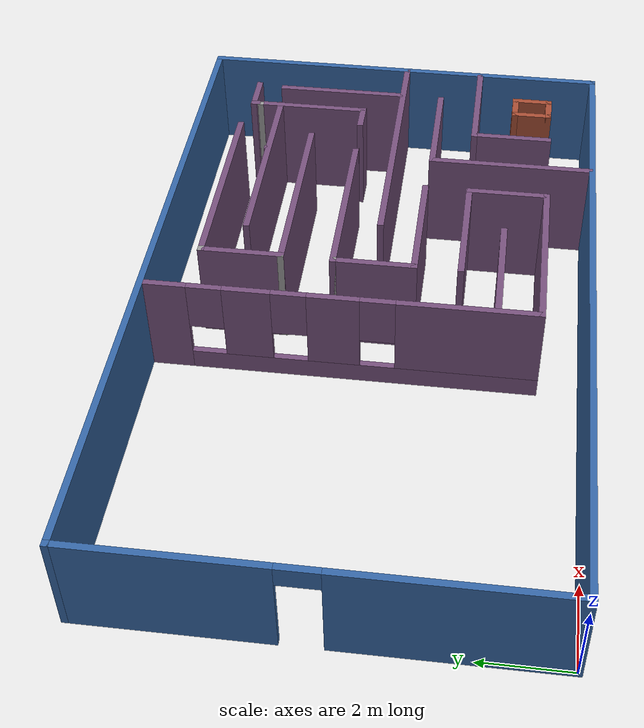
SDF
<?xml version='1.0'?>
<sdf version='1.6'>
  <model name='training_building'>
    <pose frame=''>8.09 5 0 0 -0 0</pose>
    <link name='Wall_0'>
      <pose frame=''>-8.09 -0 0 0 -0 -1.5708</pose>
      <visual name='Wall_0_Visual_0'>
        <pose frame=''>-2.92071 0 1.25 0 -0 0</pose>
        <geometry>
          <box>
            <size>4.30859 0.15 2.5</size>
          </box>
        </geometry>
        <material>
          <script>
            <uri>file://media/materials/scripts/gazebo.material</uri>
            <name>Gazebo/Grey</name>
          </script>
          <ambient>0.203922 0.396078 0.643137 1</ambient>
        </material>
        <meta>
          <layer>0</layer>
        </meta>
      </visual>
      <collision name='Wall_0_Collision_0'>
        <geometry>
          <box>
            <size>4.30859 0.15 2.5</size>
          </box>
        </geometry>
        <pose frame=''>-2.92071 0 1.25 0 -0 0</pose>
      </collision>
      <visual name='Wall_0_Visual_1'>
        <pose frame=''>2.60429 0 1.25 0 -0 0</pose>
        <geometry>
          <box>
            <size>4.94141 0.15 2.5</size>
          </box>
        </geometry>
        <material>
          <script>
            <uri>file://media/materials/scripts/gazebo.material</uri>
            <name>Gazebo/Grey</name>
          </script>
          <ambient>0.203922 0.396078 0.643137 1</ambient>
        </material>
        <meta>
          <layer>0</layer>
        </meta>
      </visual>
      <collision name='Wall_0_Collision_1'>
        <geometry>
          <box>
            <size>4.94141 0.15 2.5</size>
          </box>
        </geometry>
        <pose frame=''>2.60429 0 1.25 0 -0 0</pose>
      </collision>
      <visual name='Wall_0_Visual_2'>
        <pose frame=''>-0.316412 0 2.25 0 -0 0</pose>
        <geometry>
          <box>
            <size>0.9 0.15 0.5</size>
          </box>
        </geometry>
        <material>
          <script>
            <uri>file://media/materials/scripts/gazebo.material</uri>
            <name>Gazebo/Grey</name>
          </script>
          <ambient>0.203922 0.396078 0.643137 1</ambient>
        </material>
        <meta>
          <layer>0</layer>
        </meta>
      </visual>
      <collision name='Wall_0_Collision_2'>
        <geometry>
          <box>
            <size>0.9 0.15 0.5</size>
          </box>
        </geometry>
        <pose frame=''>-0.316412 0 2.25 0 -0 0</pose>
      </collision>
    </link>
    <link name='Wall_1'>
      <collision name='Wall_1_Collision'>
        <geometry>
          <box>
            <size>16.33 0.15 2.5</size>
          </box>
        </geometry>
        <pose frame=''>0 0 1.25 0 -0 0</pose>
      </collision>
      <visual name='Wall_1_Visual'>
        <pose frame=''>0 0 1.25 0 -0 0</pose>
        <geometry>
          <box>
            <size>16.33 0.15 2.5</size>
          </box>
        </geometry>
        <material>
          <script>
            <uri>file://media/materials/scripts/gazebo.material</uri>
            <name>Gazebo/Grey</name>
          </script>
          <ambient>0.203922 0.396078 0.643137 1</ambient>
        </material>
        <meta>
          <layer>0</layer>
        </meta>
      </visual>
      <pose frame=''>-0 -5 0 0 -0 0</pose>
    </link>
    <link name='Wall_107'>
      <collision name='Wall_107_Collision'>
        <geometry>
          <box>
            <size>4.25 0.15 2.5</size>
          </box>
        </geometry>
        <pose frame=''>0 0 1.25 0 -0 0</pose>
      </collision>
      <visual name='Wall_107_Visual'>
        <pose frame=''>0 0 1.25 0 -0 0</pose>
        <geometry>
          <box>
            <size>4.25 0.15 2.5</size>
          </box>
        </geometry>
        <material>
          <script>
            <uri>file://media/materials/scripts/gazebo.material</uri>
            <name>Gazebo/Grey</name>
          </script>
          <ambient>0.458824 0.313726 0.482353 1</ambient>
        </material>
        <meta>
          <layer>0</layer>
        </meta>
      </visual>
      <pose frame=''>2.35436 0.841485 0 0 -0 3.14159</pose>
    </link>
    <link name='Wall_108'>
      <collision name='Wall_108_Collision'>
        <geometry>
          <box>
            <size>0.15 0.15 2.5</size>
          </box>
        </geometry>
        <pose frame=''>0 0 1.25 0 -0 0</pose>
      </collision>
      <visual name='Wall_108_Visual'>
        <pose frame=''>0 0 1.25 0 -0 0</pose>
        <geometry>
          <box>
            <size>0.15 0.15 2.5</size>
          </box>
        </geometry>
        <material>
          <script>
            <uri>file://media/materials/scripts/gazebo.material</uri>
            <name>Gazebo/Grey</name>
          </script>
          <ambient>1 1 1 1</ambient>
        </material>
        <meta>
          <layer>0</layer>
        </meta>
      </visual>
      <pose frame=''>0.304359 0.841485 0 0 -0 0</pose>
    </link>
    <link name='Wall_109'>
      <collision name='Wall_109_Collision'>
        <geometry>
          <box>
            <size>2 0.15 2.5</size>
          </box>
        </geometry>
        <pose frame=''>0 0 1.25 0 -0 0</pose>
      </collision>
      <visual name='Wall_109_Visual'>
        <pose frame=''>0 0 1.25 0 -0 0</pose>
        <geometry>
          <box>
            <size>2 0.15 2.5</size>
          </box>
        </geometry>
        <material>
          <script>
            <uri>file://media/materials/scripts/gazebo.material</uri>
            <name>Gazebo/Grey</name>
          </script>
          <ambient>0.458824 0.313726 0.482353 1</ambient>
        </material>
        <meta>
          <layer>0</layer>
        </meta>
      </visual>
      <pose frame=''>0.304359 -0.083515 0 0 -0 -1.5708</pose>
    </link>
    <link name='Wall_11'>
      <collision name='Wall_11_Collision'>
        <geometry>
          <box>
            <size>2.75 0.15 2.5</size>
          </box>
        </geometry>
        <pose frame=''>0 0 1.25 0 -0 0</pose>
      </collision>
      <visual name='Wall_11_Visual'>
        <pose frame=''>0 0 1.25 0 -0 0</pose>
        <geometry>
          <box>
            <size>2.75 0.15 2.5</size>
          </box>
        </geometry>
        <material>
          <script>
            <uri>file://media/materials/scripts/gazebo.material</uri>
            <name>Gazebo/Grey</name>
          </script>
          <ambient>0.458824 0.313726 0.482353 1</ambient>
        </material>
        <meta>
          <layer>0</layer>
        </meta>
      </visual>
      <pose frame=''>0.486749 -2.96094 0 0 -0 0</pose>
    </link>
    <link name='Wall_110'>
      <collision name='Wall_110_Collision'>
        <geometry>
          <box>
            <size>3 0.15 2.5</size>
          </box>
        </geometry>
        <pose frame=''>0 0 1.25 0 -0 0</pose>
      </collision>
      <visual name='Wall_110_Visual'>
        <pose frame=''>0 0 1.25 0 -0 0</pose>
        <geometry>
          <box>
            <size>3 0.15 2.5</size>
          </box>
        </geometry>
        <material>
          <script>
            <uri>file://media/materials/scripts/gazebo.material</uri>
            <name>Gazebo/Grey</name>
          </script>
          <ambient>0.458824 0.313726 0.482353 1</ambient>
        </material>
        <meta>
          <layer>0</layer>
        </meta>
      </visual>
      <pose frame=''>1.72936 -1.00852 0 0 -0 0</pose>
    </link>
    <link name='Wall_113'>
      <collision name='Wall_113_Collision'>
        <geometry>
          <box>
            <size>0.15 0.15 2.5</size>
          </box>
        </geometry>
        <pose frame=''>0 0 1.25 0 -0 0</pose>
      </collision>
      <visual name='Wall_113_Visual'>
        <pose frame=''>0 0 1.25 0 -0 0</pose>
        <geometry>
          <box>
            <size>0.15 0.15 2.5</size>
          </box>
        </geometry>
        <material>
          <script>
            <uri>file://media/materials/scripts/gazebo.material</uri>
            <name>Gazebo/Grey</name>
          </script>
          <ambient>0.458824 0.313726 0.482353 1</ambient>
        </material>
        <meta>
          <layer>0</layer>
        </meta>
      </visual>
      <pose frame=''>4.27395 3.04022 0 0 -0 0</pose>
    </link>
    <link name='Wall_126'>
      <collision name='Wall_126_Collision'>
        <geometry>
          <box>
            <size>3 0.15 2.5</size>
          </box>
        </geometry>
        <pose frame=''>0 0 1.25 0 -0 0</pose>
      </collision>
      <visual name='Wall_126_Visual'>
        <pose frame=''>0 0 1.25 0 -0 0</pose>
        <geometry>
          <box>
            <size>3 0.15 2.5</size>
          </box>
        </geometry>
        <material>
          <script>
            <uri>file://media/materials/scripts/gazebo.material</uri>
            <name>Gazebo/Grey</name>
          </script>
          <ambient>0.458824 0.313726 0.482353 1</ambient>
        </material>
        <meta>
          <layer>0</layer>
        </meta>
      </visual>
      <pose frame=''>6.1436 2.28693 0 0 -0 -1.5708</pose>
    </link>
    <link name='Wall_127'>
      <collision name='Wall_127_Collision'>
        <geometry>
          <box>
            <size>0.15 0.15 2.5</size>
          </box>
        </geometry>
        <pose frame=''>0 0 1.25 0 -0 0</pose>
      </collision>
      <visual name='Wall_127_Visual'>
        <pose frame=''>0 0 1.25 0 -0 0</pose>
        <geometry>
          <box>
            <size>0.15 0.15 2.5</size>
          </box>
        </geometry>
        <material>
          <script>
            <uri>file://media/materials/scripts/gazebo.material</uri>
            <name>Gazebo/Grey</name>
          </script>
          <ambient>1 1 1 1</ambient>
        </material>
        <meta>
          <layer>0</layer>
        </meta>
      </visual>
      <pose frame=''>6.1436 0.861927 0 0 -0 0</pose>
    </link>
    <link name='Wall_128'>
      <collision name='Wall_128_Collision'>
        <geometry>
          <box>
            <size>0.75 0.15 2.5</size>
          </box>
        </geometry>
        <pose frame=''>0 0 1.25 0 -0 0</pose>
      </collision>
      <visual name='Wall_128_Visual'>
        <pose frame=''>0 0 1.25 0 -0 0</pose>
        <geometry>
          <box>
            <size>0.75 0.15 2.5</size>
          </box>
        </geometry>
        <material>
          <script>
            <uri>file://media/materials/scripts/gazebo.material</uri>
            <name>Gazebo/Grey</name>
          </script>
          <ambient>0.458824 0.313726 0.482353 1</ambient>
        </material>
        <meta>
          <layer>0</layer>
        </meta>
      </visual>
      <pose frame=''>5.8436 0.861927 0 0 -0 3.14159</pose>
    </link>
    <link name='Wall_133'>
      <collision name='Wall_133_Collision'>
        <geometry>
          <box>
            <size>4.75 0.15 2.5</size>
          </box>
        </geometry>
        <pose frame=''>0 0 1.25 0 -0 0</pose>
      </collision>
      <visual name='Wall_133_Visual'>
        <pose frame=''>0 0 1.25 0 -0 0</pose>
        <geometry>
          <box>
            <size>4.75 0.15 2.5</size>
          </box>
        </geometry>
        <material>
          <script>
            <uri>file://media/materials/scripts/gazebo.material</uri>
            <name>Gazebo/Grey</name>
          </script>
          <ambient>0.458824 0.313726 0.482353 1</ambient>
        </material>
        <meta>
          <layer>0</layer>
        </meta>
      </visual>
      <pose frame=''>2.62954 2.03445 0 0 -0 0</pose>
    </link>
    <link name='Wall_135'>
      <collision name='Wall_135_Collision'>
        <geometry>
          <box>
            <size>5 0.15 2.5</size>
          </box>
        </geometry>
        <pose frame=''>0 0 1.25 0 -0 0</pose>
      </collision>
      <visual name='Wall_135_Visual'>
        <pose frame=''>0 0 1.25 0 -0 0</pose>
        <geometry>
          <box>
            <size>5 0.15 2.5</size>
          </box>
        </geometry>
        <material>
          <script>
            <uri>file://media/materials/scripts/gazebo.material</uri>
            <name>Gazebo/Grey</name>
          </script>
          <ambient>0.458824 0.313726 0.482353 1</ambient>
        </material>
        <meta>
          <layer>0</layer>
        </meta>
      </visual>
      <pose frame=''>3.73389 3.00835 0 0 -0 3.14159</pose>
    </link>
    <link name='Wall_137'>
      <collision name='Wall_137_Collision'>
        <geometry>
          <box>
            <size>3.25 0.15 2.5</size>
          </box>
        </geometry>
        <pose frame=''>0 0 1.25 0 -0 0</pose>
      </collision>
      <visual name='Wall_137_Visual'>
        <pose frame=''>0 0 1.25 0 -0 0</pose>
        <geometry>
          <box>
            <size>3.25 0.15 2.5</size>
          </box>
        </geometry>
        <material>
          <script>
            <uri>file://media/materials/scripts/gazebo.material</uri>
            <name>Gazebo/Grey</name>
          </script>
          <ambient>0.458824 0.313726 0.482353 1</ambient>
        </material>
        <meta>
          <layer>0</layer>
        </meta>
      </visual>
      <pose frame=''>6.92365 1.48894 0 0 -0 -1.5708</pose>
    </link>
    <link name='Wall_139'>
      <collision name='Wall_139_Collision'>
        <geometry>
          <box>
            <size>5 0.15 2.5</size>
          </box>
        </geometry>
        <pose frame=''>0 0 1.25 0 -0 0</pose>
      </collision>
      <visual name='Wall_139_Visual'>
        <pose frame=''>0 0 1.25 0 -0 0</pose>
        <geometry>
          <box>
            <size>5 0.15 2.5</size>
          </box>
        </geometry>
        <material>
          <script>
            <uri>file://media/materials/scripts/gazebo.material</uri>
            <name>Gazebo/Grey</name>
          </script>
          <ambient>0.458824 0.313726 0.482353 1</ambient>
        </material>
        <meta>
          <layer>0</layer>
        </meta>
      </visual>
      <pose frame=''>2.75454 3.88445 0 0 -0 0</pose>
    </link>
    <link name='Wall_142'>
      <collision name='Wall_142_Collision'>
        <geometry>
          <box>
            <size>1 0.15 2.5</size>
          </box>
        </geometry>
        <pose frame=''>0 0 1.25 0 -0 0</pose>
      </collision>
      <visual name='Wall_142_Visual'>
        <pose frame=''>0 0 1.25 0 -0 0</pose>
        <geometry>
          <box>
            <size>1 0.15 2.5</size>
          </box>
        </geometry>
        <material>
          <script>
            <uri>file://media/materials/scripts/gazebo.material</uri>
            <name>Gazebo/Grey</name>
          </script>
          <ambient>0.458824 0.313726 0.482353 1</ambient>
        </material>
        <meta>
          <layer>0</layer>
        </meta>
      </visual>
      <pose frame=''>6.5686 3.71193 0 0 -0 0</pose>
    </link>
    <link name='Wall_15'>
      <collision name='Wall_15_Collision'>
        <geometry>
          <box>
            <size>4 0.15 2.5</size>
          </box>
        </geometry>
        <pose frame=''>0 0 1.25 0 -0 0</pose>
      </collision>
      <visual name='Wall_15_Visual'>
        <pose frame=''>0 0 1.25 0 -0 0</pose>
        <geometry>
          <box>
            <size>4 0.15 2.5</size>
          </box>
        </geometry>
        <material>
          <script>
            <uri>file://media/materials/scripts/gazebo.material</uri>
            <name>Gazebo/Grey</name>
          </script>
          <ambient>0.458824 0.313726 0.482353 1</ambient>
        </material>
        <meta>
          <layer>0</layer>
        </meta>
      </visual>
      <pose frame=''>4.27008 -3.00595 0 0 -0 1.5708</pose>
    </link>
    <link name='Wall_16'>
      <collision name='Wall_16_Collision'>
        <geometry>
          <box>
            <size>2.75 0.15 2.5</size>
          </box>
        </geometry>
        <pose frame=''>0 0 1.25 0 -0 0</pose>
      </collision>
      <visual name='Wall_16_Visual'>
        <pose frame=''>0 0 1.25 0 -0 0</pose>
        <geometry>
          <box>
            <size>2.75 0.15 2.5</size>
          </box>
        </geometry>
        <material>
          <script>
            <uri>file://media/materials/scripts/gazebo.material</uri>
            <name>Gazebo/Grey</name>
          </script>
          <ambient>0.458824 0.313726 0.482353 1</ambient>
        </material>
        <meta>
          <layer>0</layer>
        </meta>
      </visual>
      <pose frame=''>5.57008 -1.08095 0 0 -0 0</pose>
    </link>
    <link name='Wall_18'>
      <collision name='Wall_18_Collision'>
        <geometry>
          <box>
            <size>2.75 0.15 2.5</size>
          </box>
        </geometry>
        <pose frame=''>0 0 1.25 0 -0 0</pose>
      </collision>
      <visual name='Wall_18_Visual'>
        <pose frame=''>0 0 1.25 0 -0 0</pose>
        <geometry>
          <box>
            <size>2.75 0.15 2.5</size>
          </box>
        </geometry>
        <material>
          <script>
            <uri>file://media/materials/scripts/gazebo.material</uri>
            <name>Gazebo/Grey</name>
          </script>
          <ambient>0.458824 0.313726 0.482353 1</ambient>
        </material>
        <meta>
          <layer>0</layer>
        </meta>
      </visual>
      <pose frame=''>6.71662 -2.04629 0 0 -0 3.14159</pose>
    </link>
    <link name='Wall_19'>
      <collision name='Wall_19_Collision'>
        <geometry>
          <box>
            <size>2 0.15 2.5</size>
          </box>
        </geometry>
        <pose frame=''>0 0 1.25 0 -0 0</pose>
      </collision>
      <visual name='Wall_19_Visual'>
        <pose frame=''>0 0 1.25 0 -0 0</pose>
        <geometry>
          <box>
            <size>2 0.15 2.5</size>
          </box>
        </geometry>
        <material>
          <script>
            <uri>file://media/materials/scripts/gazebo.material</uri>
            <name>Gazebo/Grey</name>
          </script>
          <ambient>0.458824 0.313726 0.482353 1</ambient>
        </material>
        <meta>
          <layer>0</layer>
        </meta>
      </visual>
      <pose frame=''>5.41662 -2.97129 0 0 -0 -1.5708</pose>
    </link>
    <link name='Wall_2'>
      <collision name='Wall_2_Collision'>
        <geometry>
          <box>
            <size>10.15 0.15 2.5</size>
          </box>
        </geometry>
        <pose frame=''>0 0 1.25 0 -0 0</pose>
      </collision>
      <visual name='Wall_2_Visual'>
        <pose frame=''>0 0 1.25 0 -0 0</pose>
        <geometry>
          <box>
            <size>10.15 0.15 2.5</size>
          </box>
        </geometry>
        <material>
          <script>
            <uri>file://media/materials/scripts/gazebo.material</uri>
            <name>Gazebo/Grey</name>
          </script>
          <ambient>0.203922 0.396078 0.643137 1</ambient>
        </material>
        <meta>
          <layer>0</layer>
        </meta>
      </visual>
      <pose frame=''>8.09 -0 0 0 -0 1.5708</pose>
    </link>
    <link name='Wall_21'>
      <collision name='Wall_21_Collision'>
        <geometry>
          <box>
            <size>0.75 0.15 2.5</size>
          </box>
        </geometry>
        <pose frame=''>0 0 1.25 0 -0 0</pose>
      </collision>
      <visual name='Wall_21_Visual'>
        <pose frame=''>0 0 1.25 0 -0 0</pose>
        <geometry>
          <box>
            <size>0.75 0.15 2.5</size>
          </box>
        </geometry>
        <material>
          <script>
            <uri>file://media/materials/scripts/gazebo.material</uri>
            <name>Gazebo/Bricks</name>
          </script>
          <ambient>0.996078 0.47451 0.0196078 1</ambient>
        </material>
        <meta>
          <layer>0</layer>
        </meta>
      </visual>
      <pose frame=''>6.73357 -3.87559 0 0 -0 0</pose>
    </link>
    <link name='Wall_22'>
      <collision name='Wall_22_Collision'>
        <geometry>
          <box>
            <size>1 0.15 2.5</size>
          </box>
        </geometry>
        <pose frame=''>0 0 1.25 0 -0 0</pose>
      </collision>
      <visual name='Wall_22_Visual'>
        <pose frame=''>0 0 1.25 0 -0 0</pose>
        <geometry>
          <box>
            <size>1 0.15 2.5</size>
          </box>
        </geometry>
        <material>
          <script>
            <uri>file://media/materials/scripts/gazebo.material</uri>
            <name>Gazebo/Bricks</name>
          </script>
          <ambient>0.996078 0.47451 0.0196078 1</ambient>
        </material>
        <meta>
          <layer>0</layer>
        </meta>
      </visual>
      <pose frame=''>7.03357 -3.45058 0 0 -0 1.5708</pose>
    </link>
    <link name='Wall_23'>
      <collision name='Wall_23_Collision'>
        <geometry>
          <box>
            <size>0.75 0.15 2.5</size>
          </box>
        </geometry>
        <pose frame=''>0 0 1.25 0 -0 0</pose>
      </collision>
      <visual name='Wall_23_Visual'>
        <pose frame=''>0 0 1.25 0 -0 0</pose>
        <geometry>
          <box>
            <size>0.75 0.15 2.5</size>
          </box>
        </geometry>
        <material>
          <script>
            <uri>file://media/materials/scripts/gazebo.material</uri>
            <name>Gazebo/Bricks</name>
          </script>
          <ambient>0.996078 0.47451 0.0196078 1</ambient>
        </material>
        <meta>
          <layer>0</layer>
        </meta>
      </visual>
      <pose frame=''>6.73357 -3.02558 0 0 -0 3.14159</pose>
    </link>
    <link name='Wall_24'>
      <collision name='Wall_24_Collision'>
        <geometry>
          <box>
            <size>1 0.15 2.5</size>
          </box>
        </geometry>
        <pose frame=''>0 0 1.25 0 -0 0</pose>
      </collision>
      <visual name='Wall_24_Visual'>
        <pose frame=''>0 0 1.25 0 -0 0</pose>
        <geometry>
          <box>
            <size>1 0.15 2.5</size>
          </box>
        </geometry>
        <material>
          <script>
            <uri>file://media/materials/scripts/gazebo.material</uri>
            <name>Gazebo/Bricks</name>
          </script>
          <ambient>0.996078 0.47451 0.0196078 1</ambient>
        </material>
        <meta>
          <layer>0</layer>
        </meta>
      </visual>
      <pose frame=''>6.43357 -3.45058 0 0 -0 -1.5708</pose>
    </link>
    <link name='Wall_27'>
      <collision name='Wall_27_Collision'>
        <geometry>
          <box>
            <size>6.5 0.15 2.5</size>
          </box>
        </geometry>
        <pose frame=''>0 0 1.25 0 -0 0</pose>
      </collision>
      <visual name='Wall_27_Visual'>
        <pose frame=''>0 0 1.25 0 -0 0</pose>
        <geometry>
          <box>
            <size>6.5 0.15 2.5</size>
          </box>
        </geometry>
        <material>
          <script>
            <uri>file://media/materials/scripts/gazebo.material</uri>
            <name>Gazebo/Grey</name>
          </script>
          <ambient>0.458824 0.313726 0.482353 1</ambient>
        </material>
        <meta>
          <layer>0</layer>
        </meta>
      </visual>
      <pose frame=''>4.8768 -0.093868 0 0 -0 3.14159</pose>
    </link>
    <link name='Wall_3'>
      <collision name='Wall_3_Collision'>
        <geometry>
          <box>
            <size>16.33 0.15 2.5</size>
          </box>
        </geometry>
        <pose frame=''>0 0 1.25 0 -0 0</pose>
      </collision>
      <visual name='Wall_3_Visual'>
        <pose frame=''>0 0 1.25 0 -0 0</pose>
        <geometry>
          <box>
            <size>16.33 0.15 2.5</size>
          </box>
        </geometry>
        <material>
          <script>
            <uri>file://media/materials/scripts/gazebo.material</uri>
            <name>Gazebo/Grey</name>
          </script>
          <ambient>0.203922 0.396078 0.643137 1</ambient>
        </material>
        <meta>
          <layer>0</layer>
        </meta>
      </visual>
      <pose frame=''>-0 5 0 0 -0 3.14159</pose>
    </link>
    <link name='Wall_32'>
      <collision name='Wall_32_Collision'>
        <geometry>
          <box>
            <size>0.175179 0.15 2.5</size>
          </box>
        </geometry>
        <pose frame=''>0 0 1.25 0 -0 0</pose>
      </collision>
      <visual name='Wall_32_Visual'>
        <pose frame=''>0 0 1.25 0 -0 0</pose>
        <geometry>
          <box>
            <size>0.175179 0.15 2.5</size>
          </box>
        </geometry>
        <material>
          <script>
            <uri>file://media/materials/scripts/gazebo.material</uri>
            <name>Gazebo/Grey</name>
          </script>
          <ambient>0.458824 0.313726 0.482353 1</ambient>
        </material>
        <meta>
          <layer>0</layer>
        </meta>
      </visual>
      <pose frame=''>4.41695 0.841485 0 0 -0 3.14159</pose>
    </link>
    <link name='Wall_36'>
      <collision name='Wall_36_Collision'>
        <geometry>
          <box>
            <size>0.15 0.15 2.5</size>
          </box>
        </geometry>
        <pose frame=''>0 0 1.25 0 -0 0</pose>
      </collision>
      <visual name='Wall_36_Visual'>
        <pose frame=''>0 0 1.25 0 -0 0</pose>
        <geometry>
          <box>
            <size>0.15 0.15 2.5</size>
          </box>
        </geometry>
        <material>
          <script>
            <uri>file://media/materials/scripts/gazebo.material</uri>
            <name>Gazebo/Grey</name>
          </script>
          <ambient>1 1 1 1</ambient>
        </material>
        <meta>
          <layer>0</layer>
        </meta>
      </visual>
      <pose frame=''>0.329538 2.03445 0 0 -0 0</pose>
    </link>
    <link name='Wall_39'>
      <collision name='Wall_39_Collision'>
        <geometry>
          <box>
            <size>0.15 0.15 2.5</size>
          </box>
        </geometry>
        <pose frame=''>0 0 1.25 0 -0 0</pose>
      </collision>
      <visual name='Wall_39_Visual'>
        <pose frame=''>0 0 1.25 0 -0 0</pose>
        <geometry>
          <box>
            <size>0.15 0.15 2.5</size>
          </box>
        </geometry>
        <material>
          <script>
            <uri>file://media/materials/scripts/gazebo.material</uri>
            <name>Gazebo/Grey</name>
          </script>
          <ambient>1 1 1 1</ambient>
        </material>
        <meta>
          <layer>0</layer>
        </meta>
      </visual>
      <pose frame=''>6.14061 3.52891 0 0 -0 0</pose>
    </link>
    <link name='Wall_41'>
      <collision name='Wall_41_Collision'>
        <geometry>
          <box>
            <size>2 0.15 2.5</size>
          </box>
        </geometry>
        <pose frame=''>0 0 1.25 0 -0 0</pose>
      </collision>
      <visual name='Wall_41_Visual'>
        <pose frame=''>0 0 1.25 0 -0 0</pose>
        <geometry>
          <box>
            <size>2 0.15 2.5</size>
          </box>
        </geometry>
        <material>
          <script>
            <uri>file://media/materials/scripts/gazebo.material</uri>
            <name>Gazebo/Grey</name>
          </script>
          <ambient>0.458824 0.313726 0.482353 1</ambient>
        </material>
        <meta>
          <layer>0</layer>
        </meta>
      </visual>
      <pose frame=''>0.329538 2.95945 0 0 -0 1.5708</pose>
    </link>
    <link name='Wall_42'>
      <collision name='Wall_42_Collision'>
        <geometry>
          <box>
            <size>0.16 0.15 2.5</size>
          </box>
        </geometry>
        <pose frame=''>0 0 1.25 0 -0 0</pose>
      </collision>
      <visual name='Wall_42_Visual'>
        <pose frame=''>0 0 1.25 0 -0 0</pose>
        <geometry>
          <box>
            <size>0.16 0.15 2.5</size>
          </box>
        </geometry>
        <material>
          <script>
            <uri>file://media/materials/scripts/gazebo.material</uri>
            <name>Gazebo/Grey</name>
          </script>
          <ambient>1 1 1 1</ambient>
        </material>
        <meta>
          <layer>0</layer>
        </meta>
      </visual>
      <pose frame=''>0.334538 3.88445 0 0 -0 0</pose>
    </link>
    <link name='Wall_5'>
      <pose frame=''>-0.931164 0.510113 0 0 -0 -1.5708</pose>
      <visual name='Wall_5_Visual_0'>
        <pose frame=''>-3.97443 0 1.25 0 -0 0</pose>
        <geometry>
          <box>
            <size>1.05114 0.15 2.5</size>
          </box>
        </geometry>
        <material>
          <script>
            <uri>file://media/materials/scripts/gazebo.material</uri>
            <name>Gazebo/Grey</name>
          </script>
          <ambient>0.458824 0.313726 0.482353 1</ambient>
        </material>
        <meta>
          <layer>0</layer>
        </meta>
      </visual>
      <collision name='Wall_5_Collision_0'>
        <geometry>
          <box>
            <size>1.05114 0.15 2.5</size>
          </box>
        </geometry>
        <pose frame=''>-3.97443 0 1.25 0 -0 0</pose>
      </collision>
      <visual name='Wall_5_Visual_1'>
        <pose frame=''>0.525569 0 0.25 0 -0 0</pose>
        <geometry>
          <box>
            <size>7.94886 0.15 0.5</size>
          </box>
        </geometry>
        <material>
          <script>
            <uri>file://media/materials/scripts/gazebo.material</uri>
            <name>Gazebo/Grey</name>
          </script>
          <ambient>0.458824 0.313726 0.482353 1</ambient>
        </material>
        <meta>
          <layer>0</layer>
        </meta>
      </visual>
      <collision name='Wall_5_Collision_1'>
        <geometry>
          <box>
            <size>7.94886 0.15 0.5</size>
          </box>
        </geometry>
        <pose frame=''>0.525569 0 0.25 0 -0 0</pose>
      </collision>
      <visual name='Wall_5_Visual_2'>
        <pose frame=''>-2.10057 0 1.5 0 -0 0</pose>
        <geometry>
          <box>
            <size>1.09659 0.15 2</size>
          </box>
        </geometry>
        <material>
          <script>
            <uri>file://media/materials/scripts/gazebo.material</uri>
            <name>Gazebo/Grey</name>
          </script>
          <ambient>0.458824 0.313726 0.482353 1</ambient>
        </material>
        <meta>
          <layer>0</layer>
        </meta>
      </visual>
      <collision name='Wall_5_Collision_2'>
        <geometry>
          <box>
            <size>1.09659 0.15 2</size>
          </box>
        </geometry>
        <pose frame=''>-2.10057 0 1.5 0 -0 0</pose>
      </collision>
      <visual name='Wall_5_Visual_3'>
        <pose frame=''>-0.158087 0 1.5 0 -0 0</pose>
        <geometry>
          <box>
            <size>1.18836 0.15 2</size>
          </box>
        </geometry>
        <material>
          <script>
            <uri>file://media/materials/scripts/gazebo.material</uri>
            <name>Gazebo/Grey</name>
          </script>
          <ambient>0.458824 0.313726 0.482353 1</ambient>
        </material>
        <meta>
          <layer>0</layer>
        </meta>
      </visual>
      <collision name='Wall_5_Collision_3'>
        <geometry>
          <box>
            <size>1.18836 0.15 2</size>
          </box>
        </geometry>
        <pose frame=''>-0.158087 0 1.5 0 -0 0</pose>
      </collision>
      <visual name='Wall_5_Visual_4'>
        <pose frame=''>2.86805 0 1.5 0 -0 0</pose>
        <geometry>
          <box>
            <size>3.2639 0.15 2</size>
          </box>
        </geometry>
        <material>
          <script>
            <uri>file://media/materials/scripts/gazebo.material</uri>
            <name>Gazebo/Grey</name>
          </script>
          <ambient>0.458824 0.313726 0.482353 1</ambient>
        </material>
        <meta>
          <layer>0</layer>
        </meta>
      </visual>
      <collision name='Wall_5_Collision_4'>
        <geometry>
          <box>
            <size>3.2639 0.15 2</size>
          </box>
        </geometry>
        <pose frame=''>2.86805 0 1.5 0 -0 0</pose>
      </collision>
      <visual name='Wall_5_Visual_5'>
        <pose frame=''>-3.04886 0 1.9 0 -0 0</pose>
        <geometry>
          <box>
            <size>0.8 0.15 1.2</size>
          </box>
        </geometry>
        <material>
          <script>
            <uri>file://media/materials/scripts/gazebo.material</uri>
            <name>Gazebo/Grey</name>
          </script>
          <ambient>0.458824 0.313726 0.482353 1</ambient>
        </material>
        <meta>
          <layer>0</layer>
        </meta>
      </visual>
      <collision name='Wall_5_Collision_5'>
        <geometry>
          <box>
            <size>0.8 0.15 1.2</size>
          </box>
        </geometry>
        <pose frame=''>-3.04886 0 1.9 0 -0 0</pose>
      </collision>
      <visual name='Wall_5_Visual_6'>
        <pose frame=''>-1.15227 0 1.9 0 -0 0</pose>
        <geometry>
          <box>
            <size>0.8 0.15 1.2</size>
          </box>
        </geometry>
        <material>
          <script>
            <uri>file://media/materials/scripts/gazebo.material</uri>
            <name>Gazebo/Grey</name>
          </script>
          <ambient>0.458824 0.313726 0.482353 1</ambient>
        </material>
        <meta>
          <layer>0</layer>
        </meta>
      </visual>
      <collision name='Wall_5_Collision_6'>
        <geometry>
          <box>
            <size>0.8 0.15 1.2</size>
          </box>
        </geometry>
        <pose frame=''>-1.15227 0 1.9 0 -0 0</pose>
      </collision>
      <visual name='Wall_5_Visual_7'>
        <pose frame=''>0.836096 0 1.9 0 -0 0</pose>
        <geometry>
          <box>
            <size>0.8 0.15 1.2</size>
          </box>
        </geometry>
        <material>
          <script>
            <uri>file://media/materials/scripts/gazebo.material</uri>
            <name>Gazebo/Grey</name>
          </script>
          <ambient>0.458824 0.313726 0.482353 1</ambient>
        </material>
        <meta>
          <layer>0</layer>
        </meta>
      </visual>
      <collision name='Wall_5_Collision_7'>
        <geometry>
          <box>
            <size>0.8 0.15 1.2</size>
          </box>
        </geometry>
        <pose frame=''>0.836096 0 1.9 0 -0 0</pose>
      </collision>
    </link>
    <link name='Wall_7'>
      <collision name='Wall_7_Collision'>
        <geometry>
          <box>
            <size>4.25 0.15 2.5</size>
          </box>
        </geometry>
        <pose frame=''>0 0 1.25 0 -0 0</pose>
      </collision>
      <visual name='Wall_7_Visual'>
        <pose frame=''>0 0 1.25 0 -0 0</pose>
        <geometry>
          <box>
            <size>4.25 0.15 2.5</size>
          </box>
        </geometry>
        <material>
          <script>
            <uri>file://media/materials/scripts/gazebo.material</uri>
            <name>Gazebo/Grey</name>
          </script>
          <ambient>0.458824 0.313726 0.482353 1</ambient>
        </material>
        <meta>
          <layer>0</layer>
        </meta>
      </visual>
      <pose frame=''>1.11884 -3.91489 0 0 -0 0</pose>
    </link>
    <link name='Wall_8'>
      <collision name='Wall_8_Collision'>
        <geometry>
          <box>
            <size>2 0.15 2.5</size>
          </box>
        </geometry>
        <pose frame=''>0 0 1.25 0 -0 0</pose>
      </collision>
      <visual name='Wall_8_Visual'>
        <pose frame=''>0 0 1.25 0 -0 0</pose>
        <geometry>
          <box>
            <size>2 0.15 2.5</size>
          </box>
        </geometry>
        <material>
          <script>
            <uri>file://media/materials/scripts/gazebo.material</uri>
            <name>Gazebo/Grey</name>
          </script>
          <ambient>0.458824 0.313726 0.482353 1</ambient>
        </material>
        <meta>
          <layer>0</layer>
        </meta>
      </visual>
      <pose frame=''>3.16884 -2.98989 0 0 -0 1.5708</pose>
    </link>
    <link name='Wall_9'>
      <collision name='Wall_9_Collision'>
        <geometry>
          <box>
            <size>3 0.15 2.5</size>
          </box>
        </geometry>
        <pose frame=''>0 0 1.25 0 -0 0</pose>
      </collision>
      <visual name='Wall_9_Visual'>
        <pose frame=''>0 0 1.25 0 -0 0</pose>
        <geometry>
          <box>
            <size>3 0.15 2.5</size>
          </box>
        </geometry>
        <material>
          <script>
            <uri>file://media/materials/scripts/gazebo.material</uri>
            <name>Gazebo/Grey</name>
          </script>
          <ambient>0.458824 0.313726 0.482353 1</ambient>
        </material>
        <meta>
          <layer>0</layer>
        </meta>
      </visual>
      <pose frame=''>1.74384 -2.06489 0 0 -0 3.14159</pose>
    </link>
    <static>1</static>
  </model>
</sdf>
